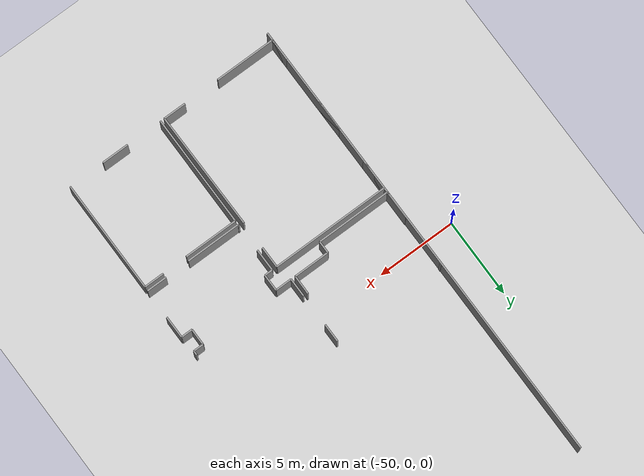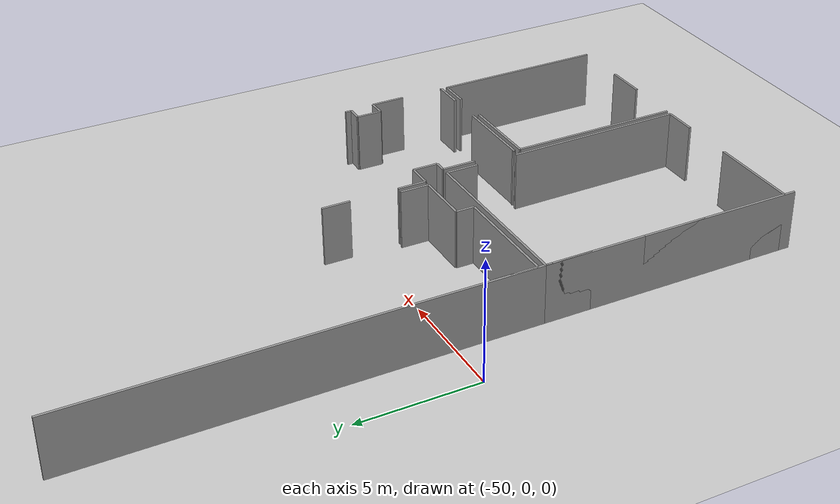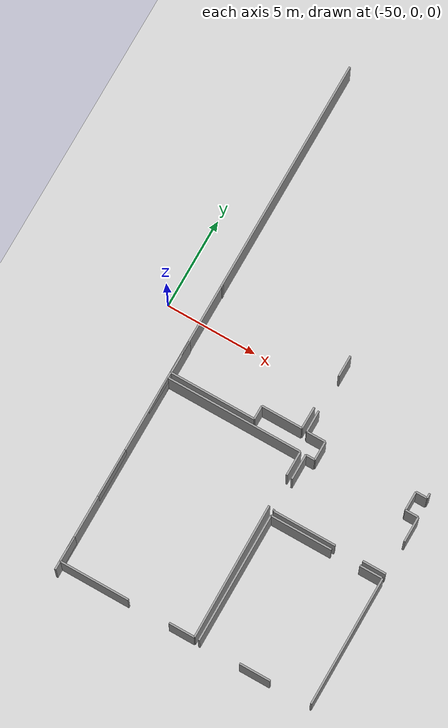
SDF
<sdf version="1.6">
 <world name="default">
  <model name="ground_plane">
   <static>1</static>
   <link name="link">
    <collision name="collision">
     <geometry><plane><normal>0 0 1</normal><size>100 100</size></plane></geometry>
     <surface><friction><ode><mu>100</mu><mu2>50</mu2></ode></friction></surface>
    </collision>
    <visual name="visual">
     <cast_shadows>0</cast_shadows>
     <geometry><plane><normal>0 0 1</normal><size>100 100</size></plane></geometry>
     <material>
      <script><uri>file://media/materials/scripts/gazebo.material</uri><name>Gazebo/Grey</name></script>
     </material>
    </visual>
   </link>
  </model>
  <model name="0510032268_A_40_1_102">
   <static>1</static>
   <link name="Wall_47">
    <collision name="Wall_47_Collision">
     <geometry><box><size>1.29396753655 0.1 2.5</size></box></geometry>
     <pose>0.646983768274 0 1.25 0 0 0</pose>
    </collision>
    <visual name="Wall_47_Visual">
     <pose>0.646983768274 0 1.25 0 0 0</pose>
     <geometry><box><size>1.29396753655 0.1 2.5</size></box></geometry>
     <material>
      <script><uri>file://media/materials/scripts/gazebo.material</uri><name>Gazebo/Grey</name></script>
      <ambient>1 1 1 1</ambient>
     </material>
    </visual>
    <pose>14.200506567 -21.5789908018 0 0 0 3.14159265359</pose>
   </link>
   <link name="Wall_48">
    <collision name="Wall_48_Collision">
     <geometry><box><size>3.49061454571 0.1 2.5</size></box></geometry>
     <pose>1.74530727285 0 1.25 0 0 0</pose>
    </collision>
    <visual name="Wall_48_Visual">
     <pose>1.74530727285 0 1.25 0 0 0</pose>
     <geometry><box><size>3.49061454571 0.1 2.5</size></box></geometry>
     <material>
      <script><uri>file://media/materials/scripts/gazebo.material</uri><name>Gazebo/Grey</name></script>
      <ambient>1 1 1 1</ambient>
     </material>
    </visual>
    <pose>11.3529400562 -21.5789908018 0 0 0 3.14159265359</pose>
   </link>
   <link name="Wall_49">
    <collision name="Wall_49_Collision">
     <geometry><box><size>0.0816347258635 0.1 2.5</size></box></geometry>
     <pose>0.0408173629317 0 1.25 0 0 0</pose>
    </collision>
    <visual name="Wall_49_Visual">
     <pose>0.0408173629317 0 1.25 0 0 0</pose>
     <geometry><box><size>0.0816347258635 0.1 2.5</size></box></geometry>
     <material>
      <script><uri>file://media/materials/scripts/gazebo.material</uri><name>Gazebo/Grey</name></script>
      <ambient>1 1 1 1</ambient>
     </material>
    </visual>
    <pose>7.86232551053 -21.5789908018 0 0 0 1.57079632679</pose>
   </link>
   <link name="Wall_50">
    <collision name="Wall_50_Collision">
     <geometry><box><size>1.40162888574 0.1 2.5</size></box></geometry>
     <pose>0.700814442872 0 1.25 0 0 0</pose>
    </collision>
    <visual name="Wall_50_Visual">
     <pose>0.700814442872 0 1.25 0 0 0</pose>
     <geometry><box><size>1.40162888574 0.1 2.5</size></box></geometry>
     <material>
      <script><uri>file://media/materials/scripts/gazebo.material</uri><name>Gazebo/Grey</name></script>
      <ambient>1 1 1 1</ambient>
     </material>
    </visual>
    <pose>7.86232551053 -19.7529375171 0 0 0 1.57079632679</pose>
   </link>
   <link name="Wall_51">
    <collision name="Wall_51_Collision">
     <geometry><box><size>0.508852225911 0.1 2.5</size></box></geometry>
     <pose>0.254426112956 0 1.25 0 0 0</pose>
    </collision>
    <visual name="Wall_51_Visual">
     <pose>0.254426112956 0 1.25 0 0 0</pose>
     <geometry><box><size>0.508852225911 0.1 2.5</size></box></geometry>
     <material>
      <script><uri>file://media/materials/scripts/gazebo.material</uri><name>Gazebo/Grey</name></script>
      <ambient>1 1 1 1</ambient>
     </material>
    </visual>
    <pose>7.86232551053 -18.3513086313 0 0 0 0.0</pose>
   </link>
   <link name="Wall_52">
    <collision name="Wall_52_Collision">
     <geometry><box><size>1.04639721706 0.1 2.5</size></box></geometry>
     <pose>0.523198608528 0 1.25 0 0 0</pose>
    </collision>
    <visual name="Wall_52_Visual">
     <pose>0.523198608528 0 1.25 0 0 0</pose>
     <geometry><box><size>1.04639721706 0.1 2.5</size></box></geometry>
     <material>
      <script><uri>file://media/materials/scripts/gazebo.material</uri><name>Gazebo/Grey</name></script>
      <ambient>1 1 1 1</ambient>
     </material>
    </visual>
    <pose>8.37117773645 -18.3513086313 0 0 0 1.57079632679</pose>
   </link>
   <link name="Wall_53">
    <collision name="Wall_53_Collision">
     <geometry><box><size>1.04639721706 0.1 2.5</size></box></geometry>
     <pose>0.523198608528 0 1.25 0 0 0</pose>
    </collision>
    <visual name="Wall_53_Visual">
     <pose>0.523198608528 0 1.25 0 0 0</pose>
     <geometry><box><size>1.04639721706 0.1 2.5</size></box></geometry>
     <material>
      <script><uri>file://media/materials/scripts/gazebo.material</uri><name>Gazebo/Grey</name></script>
      <ambient>1 1 1 1</ambient>
     </material>
    </visual>
    <pose>8.37117773645 -17.3049114143 0 0 0 3.14159265359</pose>
   </link>
   <link name="Wall_54">
    <collision name="Wall_54_Collision">
     <geometry><box><size>1.18084694441 0.1 2.5</size></box></geometry>
     <pose>0.590423472205 0 1.25 0 0 0</pose>
    </collision>
    <visual name="Wall_54_Visual">
     <pose>0.590423472205 0 1.25 0 0 0</pose>
     <geometry><box><size>1.18084694441 0.1 2.5</size></box></geometry>
     <material>
      <script><uri>file://media/materials/scripts/gazebo.material</uri><name>Gazebo/Grey</name></script>
      <ambient>1 1 1 1</ambient>
     </material>
    </visual>
    <pose>7.32478051939 -17.3049114143 0 0 0 1.57079632679</pose>
   </link>
   <link name="Wall_55">
    <collision name="Wall_55_Collision">
     <geometry><box><size>1.16561184783 0.1 2.5</size></box></geometry>
     <pose>0.582805923913 0 1.25 0 0 0</pose>
    </collision>
    <visual name="Wall_55_Visual">
     <pose>0.582805923913 0 1.25 0 0 0</pose>
     <geometry><box><size>1.16561184783 0.1 2.5</size></box></geometry>
     <material>
      <script><uri>file://media/materials/scripts/gazebo.material</uri><name>Gazebo/Grey</name></script>
      <ambient>1 1 1 1</ambient>
     </material>
    </visual>
    <pose>7.32478051939 -14.0878938114 0 0 0 1.57079632679</pose>
   </link>
   <link name="Wall_59">
    <collision name="Wall_59_Collision">
     <geometry><box><size>0.268772495572 0.1 2.5</size></box></geometry>
     <pose>0.134386247786 0 1.25 0 0 0</pose>
    </collision>
    <visual name="Wall_59_Visual">
     <pose>0.134386247786 0 1.25 0 0 0</pose>
     <geometry><box><size>0.268772495572 0.1 2.5</size></box></geometry>
     <material>
      <script><uri>file://media/materials/scripts/gazebo.material</uri><name>Gazebo/Grey</name></script>
      <ambient>1 1 1 1</ambient>
     </material>
    </visual>
    <pose>14.1198875142 -17.0073191943 0 0 0 -1.57079632679</pose>
   </link>
   <link name="Wall_60">
    <collision name="Wall_60_Collision">
     <geometry><box><size>0.631875630828 0.1 2.5</size></box></geometry>
     <pose>0.315937815414 0 1.25 0 0 0</pose>
    </collision>
    <visual name="Wall_60_Visual">
     <pose>0.315937815414 0 1.25 0 0 0</pose>
     <geometry><box><size>0.631875630828 0.1 2.5</size></box></geometry>
     <material>
      <script><uri>file://media/materials/scripts/gazebo.material</uri><name>Gazebo/Grey</name></script>
      <ambient>1 1 1 1</ambient>
     </material>
    </visual>
    <pose>14.1198875142 -17.2760916899 0 0 0 3.14159265359</pose>
   </link>
   <link name="Wall_61">
    <collision name="Wall_61_Collision">
     <geometry><box><size>1.04639721706 0.1 2.5</size></box></geometry>
     <pose>0.523198608528 0 1.25 0 0 0</pose>
    </collision>
    <visual name="Wall_61_Visual">
     <pose>0.523198608528 0 1.25 0 0 0</pose>
     <geometry><box><size>1.04639721706 0.1 2.5</size></box></geometry>
     <material>
      <script><uri>file://media/materials/scripts/gazebo.material</uri><name>Gazebo/Grey</name></script>
      <ambient>1 1 1 1</ambient>
     </material>
    </visual>
    <pose>13.4880118834 -17.2760916899 0 0 0 -1.57079632679</pose>
   </link>
   <link name="Wall_62">
    <collision name="Wall_62_Collision">
     <geometry><box><size>0.71998527274 0.1 2.5</size></box></geometry>
     <pose>0.35999263637 0 1.25 0 0 0</pose>
    </collision>
    <visual name="Wall_62_Visual">
     <pose>0.35999263637 0 1.25 0 0 0</pose>
     <geometry><box><size>0.71998527274 0.1 2.5</size></box></geometry>
     <material>
      <script><uri>file://media/materials/scripts/gazebo.material</uri><name>Gazebo/Grey</name></script>
      <ambient>1 1 1 1</ambient>
     </material>
    </visual>
    <pose>13.4880118834 -18.3224889069 0 0 0 0.0</pose>
   </link>
   <link name="Wall_63">
    <collision name="Wall_63_Collision">
     <geometry><box><size>1.40162888574 0.1 2.5</size></box></geometry>
     <pose>0.700814442872 0 1.25 0 0 0</pose>
    </collision>
    <visual name="Wall_63_Visual">
     <pose>0.700814442872 0 1.25 0 0 0</pose>
     <geometry><box><size>1.40162888574 0.1 2.5</size></box></geometry>
     <material>
      <script><uri>file://media/materials/scripts/gazebo.material</uri><name>Gazebo/Grey</name></script>
      <ambient>1 1 1 1</ambient>
     </material>
    </visual>
    <pose>14.2079971561 -18.3224889069 0 0 0 -1.57079632679</pose>
   </link>
   <link name="Wall_65">
    <collision name="Wall_65_Collision">
     <geometry><box><size>2.2742190426 0.1 2.5</size></box></geometry>
     <pose>1.1371095213 0 1.25 0 0 0</pose>
    </collision>
    <visual name="Wall_65_Visual">
     <pose>1.1371095213 0 1.25 0 0 0</pose>
     <geometry><box><size>2.2742190426 0.1 2.5</size></box></geometry>
     <material>
      <script><uri>file://media/materials/scripts/gazebo.material</uri><name>Gazebo/Grey</name></script>
      <ambient>1 1 1 1</ambient>
     </material>
    </visual>
    <pose>7.03493280688 -17.2871371349 0 0 0 3.14159265359</pose>
   </link>
   <link name="Wall_66">
    <collision name="Wall_66_Collision">
     <geometry><box><size>0.761754829208 0.1 2.5</size></box></geometry>
     <pose>0.380877414604 0 1.25 0 0 0</pose>
    </collision>
    <visual name="Wall_66_Visual">
     <pose>0.380877414604 0 1.25 0 0 0</pose>
     <geometry><box><size>0.761754829208 0.1 2.5</size></box></geometry>
     <material>
      <script><uri>file://media/materials/scripts/gazebo.material</uri><name>Gazebo/Grey</name></script>
      <ambient>1 1 1 1</ambient>
     </material>
    </visual>
    <pose>4.76071376427 -17.2871371349 0 0 0 -1.57079632679</pose>
   </link>
   <link name="Wall_67">
    <collision name="Wall_67_Collision">
     <geometry><box><size>4.7362106506 0.1 2.5</size></box></geometry>
     <pose>2.3681053253 0 1.25 0 0 0</pose>
    </collision>
    <visual name="Wall_67_Visual">
     <pose>2.3681053253 0 1.25 0 0 0</pose>
     <geometry><box><size>4.7362106506 0.1 2.5</size></box></geometry>
     <material>
      <script><uri>file://media/materials/scripts/gazebo.material</uri><name>Gazebo/Grey</name></script>
      <ambient>1 1 1 1</ambient>
     </material>
    </visual>
    <pose>4.76071376427 -18.0488919641 0 0 0 3.14159265359</pose>
   </link>
   <link name="Wall_68">
    <collision name="Wall_68_Collision">
     <geometry><box><size>1.80002666142 0.1 2.5</size></box></geometry>
     <pose>0.90001333071 0 1.25 0 0 0</pose>
    </collision>
    <visual name="Wall_68_Visual">
     <pose>0.90001333071 0 1.25 0 0 0</pose>
     <geometry><box><size>1.80002666142 0.1 2.5</size></box></geometry>
     <material>
      <script><uri>file://media/materials/scripts/gazebo.material</uri><name>Gazebo/Grey</name></script>
      <ambient>1 1 1 1</ambient>
     </material>
    </visual>
    <pose>0.0245031136729 -18.0488919641 0 0 0 1.57079632679</pose>
   </link>
   <link name="Wall_69">
    <collision name="Wall_69_Collision">
     <geometry><box><size>0.153493598085 0.1 2.5</size></box></geometry>
     <pose>0.0767467990427 0 1.25 0 0 0</pose>
    </collision>
    <visual name="Wall_69_Visual">
     <pose>0.0767467990427 0 1.25 0 0 0</pose>
     <geometry><box><size>0.153493598085 0.1 2.5</size></box></geometry>
     <material>
      <script><uri>file://media/materials/scripts/gazebo.material</uri><name>Gazebo/Grey</name></script>
      <ambient>1 1 1 1</ambient>
     </material>
    </visual>
    <pose>0.0245031136729 -13.0616830973 0 0 0 1.57079632679</pose>
   </link>
   <link name="Wall_72">
    <collision name="Wall_72_Collision">
     <geometry><box><size>1.2111171215 0.1 2.5</size></box></geometry>
     <pose>0.60555856075 0 1.25 0 0 0</pose>
    </collision>
    <visual name="Wall_72_Visual">
     <pose>0.60555856075 0 1.25 0 0 0</pose>
     <geometry><box><size>1.2111171215 0.1 2.5</size></box></geometry>
     <material>
      <script><uri>file://media/materials/scripts/gazebo.material</uri><name>Gazebo/Grey</name></script>
      <ambient>1 1 1 1</ambient>
     </material>
    </visual>
    <pose>7.04635912931 -16.0760739156 0 0 0 -1.5802309981</pose>
   </link>
   <link name="Wall_73">
    <collision name="Wall_73_Collision">
     <geometry><box><size>1.43463826168 0.1 2.5</size></box></geometry>
     <pose>0.717319130838 0 1.25 0 0 0</pose>
    </collision>
    <visual name="Wall_73_Visual">
     <pose>0.717319130838 0 1.25 0 0 0</pose>
     <geometry><box><size>1.43463826168 0.1 2.5</size></box></geometry>
     <material>
      <script><uri>file://media/materials/scripts/gazebo.material</uri><name>Gazebo/Grey</name></script>
      <ambient>1 1 1 1</ambient>
     </material>
    </visual>
    <pose>7.60510629654 -28.9497305292 0 0 0 3.14159265359</pose>
   </link>
   <link name="Wall_74">
    <collision name="Wall_74_Collision">
     <geometry><box><size>3.86882581841 0.1 2.5</size></box></geometry>
     <pose>1.93441290921 0 1.25 0 0 0</pose>
    </collision>
    <visual name="Wall_74_Visual">
     <pose>1.93441290921 0 1.25 0 0 0</pose>
     <geometry><box><size>3.86882581841 0.1 2.5</size></box></geometry>
     <material>
      <script><uri>file://media/materials/scripts/gazebo.material</uri><name>Gazebo/Grey</name></script>
      <ambient>1 1 1 1</ambient>
     </material>
    </visual>
    <pose>3.86882581841 -28.9497305292 0 0 0 3.14159265359</pose>
   </link>
   <link name="Wall_75">
    <collision name="Wall_75_Collision">
     <geometry><box><size>1.39210695038 0.1 2.5</size></box></geometry>
     <pose>0.696053475189 0 1.25 0 0 0</pose>
    </collision>
    <visual name="Wall_75_Visual">
     <pose>0.696053475189 0 1.25 0 0 0</pose>
     <geometry><box><size>1.39210695038 0.1 2.5</size></box></geometry>
     <material>
      <script><uri>file://media/materials/scripts/gazebo.material</uri><name>Gazebo/Grey</name></script>
      <ambient>1 1 1 1</ambient>
     </material>
    </visual>
    <pose>0.0 -28.9497305292 0 0 0 1.57079632679</pose>
   </link>
   <link name="Wall_76">
    <collision name="Wall_76_Collision">
     <geometry><box><size>2.687978874 0.1 2.5</size></box></geometry>
     <pose>1.343989437 0 1.25 0 0 0</pose>
    </collision>
    <visual name="Wall_76_Visual">
     <pose>1.343989437 0 1.25 0 0 0</pose>
     <geometry><box><size>2.687978874 0.1 2.5</size></box></geometry>
     <material>
      <script><uri>file://media/materials/scripts/gazebo.material</uri><name>Gazebo/Grey</name></script>
      <ambient>1 1 1 1</ambient>
     </material>
    </visual>
    <pose>0.0 -25.243666326 0 0 0 1.57079632679</pose>
   </link>
   <link name="Wall_77">
    <collision name="Wall_77_Collision">
     <geometry><box><size>1.94501399724 0.1 2.5</size></box></geometry>
     <pose>0.972506998622 0 1.25 0 0 0</pose>
    </collision>
    <visual name="Wall_77_Visual">
     <pose>0.972506998622 0 1.25 0 0 0</pose>
     <geometry><box><size>1.94501399724 0.1 2.5</size></box></geometry>
     <material>
      <script><uri>file://media/materials/scripts/gazebo.material</uri><name>Gazebo/Grey</name></script>
      <ambient>1 1 1 1</ambient>
     </material>
    </visual>
    <pose>0.0 -20.2934025684 0 0 0 1.57079632679</pose>
   </link>
   <link name="Wall_78">
    <collision name="Wall_78_Collision">
     <geometry><box><size>7.54899035745 0.1 2.5</size></box></geometry>
     <pose>3.77449517873 0 1.25 0 0 0</pose>
    </collision>
    <visual name="Wall_78_Visual">
     <pose>3.77449517873 0 1.25 0 0 0</pose>
     <geometry><box><size>7.54899035745 0.1 2.5</size></box></geometry>
     <material>
      <script><uri>file://media/materials/scripts/gazebo.material</uri><name>Gazebo/Grey</name></script>
      <ambient>1 1 1 1</ambient>
     </material>
    </visual>
    <pose>0.0 -18.3483885711 0 0 0 0.0</pose>
   </link>
   <link name="Wall_79">
    <collision name="Wall_79_Collision">
     <geometry><box><size>1.35770102393 0.1 2.5</size></box></geometry>
     <pose>0.678850511963 0 1.25 0 0 0</pose>
    </collision>
    <visual name="Wall_79_Visual">
     <pose>0.678850511963 0 1.25 0 0 0</pose>
     <geometry><box><size>1.35770102393 0.1 2.5</size></box></geometry>
     <material>
      <script><uri>file://media/materials/scripts/gazebo.material</uri><name>Gazebo/Grey</name></script>
      <ambient>1 1 1 1</ambient>
     </material>
    </visual>
    <pose>7.54899035745 -18.3483885711 0 0 0 -1.57079632679</pose>
   </link>
   <link name="Wall_80">
    <collision name="Wall_80_Collision">
     <geometry><box><size>7.48965674775 0.1 2.5</size></box></geometry>
     <pose>3.74482837387 0 1.25 0 0 0</pose>
    </collision>
    <visual name="Wall_80_Visual">
     <pose>3.74482837387 0 1.25 0 0 0</pose>
     <geometry><box><size>7.48965674775 0.1 2.5</size></box></geometry>
     <material>
      <script><uri>file://media/materials/scripts/gazebo.material</uri><name>Gazebo/Grey</name></script>
      <ambient>1 1 1 1</ambient>
     </material>
    </visual>
    <pose>7.54899035745 -21.4602840076 0 0 0 -1.56330379863</pose>
   </link>
   <link name="Wall_81">
    <collision name="Wall_81_Collision">
     <geometry><box><size>1.73070697196 0.1 2.5</size></box></geometry>
     <pose>0.865353485981 0 1.25 0 0 0</pose>
    </collision>
    <visual name="Wall_81_Visual">
     <pose>0.865353485981 0 1.25 0 0 0</pose>
     <geometry><box><size>1.73070697196 0.1 2.5</size></box></geometry>
     <material>
      <script><uri>file://media/materials/scripts/gazebo.material</uri><name>Gazebo/Grey</name></script>
      <ambient>1 1 1 1</ambient>
     </material>
    </visual>
    <pose>11.8944207807 -28.9784232945 0 0 0 3.14159265359</pose>
   </link>
   <link name="Wall_82">
    <collision name="Wall_82_Collision">
     <geometry><box><size>7.13396093467 0.1 2.5</size></box></geometry>
     <pose>3.56698046734 0 1.25 0 0 0</pose>
    </collision>
    <visual name="Wall_82_Visual">
     <pose>3.56698046734 0 1.25 0 0 0</pose>
     <geometry><box><size>7.13396093467 0.1 2.5</size></box></geometry>
     <material>
      <script><uri>file://media/materials/scripts/gazebo.material</uri><name>Gazebo/Grey</name></script>
      <ambient>1 1 1 1</ambient>
     </material>
    </visual>
    <pose>7.86994305883 -28.9784232945 0 0 0 1.57079632679</pose>
   </link>
   <link name="Wall_83">
    <collision name="Wall_83_Collision">
     <geometry><box><size>3.42624626264 0.1 2.5</size></box></geometry>
     <pose>1.71312313132 0 1.25 0 0 0</pose>
    </collision>
    <visual name="Wall_83_Visual">
     <pose>1.71312313132 0 1.25 0 0 0</pose>
     <geometry><box><size>3.42624626264 0.1 2.5</size></box></geometry>
     <material>
      <script><uri>file://media/materials/scripts/gazebo.material</uri><name>Gazebo/Grey</name></script>
      <ambient>1 1 1 1</ambient>
     </material>
    </visual>
    <pose>7.86994305883 -21.8444623598 0 0 0 0.0</pose>
   </link>
   <link name="Wall_84">
    <collision name="Wall_84_Collision">
     <geometry><box><size>1.27720893031 0.1 2.5</size></box></geometry>
     <pose>0.638604465153 0 1.25 0 0 0</pose>
    </collision>
    <visual name="Wall_84_Visual">
     <pose>0.638604465153 0 1.25 0 0 0</pose>
     <geometry><box><size>1.27720893031 0.1 2.5</size></box></geometry>
     <material>
      <script><uri>file://media/materials/scripts/gazebo.material</uri><name>Gazebo/Grey</name></script>
      <ambient>1 1 1 1</ambient>
     </material>
    </visual>
    <pose>12.8981597273 -21.8444623598 0 0 0 0.0</pose>
   </link>
   <link name="Wall_85">
    <collision name="Wall_85_Collision">
     <geometry><box><size>7.13396195141 0.1 2.5</size></box></geometry>
     <pose>3.56698097571 0 1.25 0 0 0</pose>
    </collision>
    <visual name="Wall_85_Visual">
     <pose>3.56698097571 0 1.25 0 0 0</pose>
     <geometry><box><size>7.13396195141 0.1 2.5</size></box></geometry>
     <material>
      <script><uri>file://media/materials/scripts/gazebo.material</uri><name>Gazebo/Grey</name></script>
      <ambient>1 1 1 1</ambient>
     </material>
    </visual>
    <pose>14.1753686576 -21.8444623598 0 0 0 -1.57026243352</pose>
   </link>
   <link name="Wall_471">
    <collision name="Wall_471_Collision">
     <geometry><box><size>29.4321752544 0.1 2.5</size></box></geometry>
     <pose>14.7160876272 0 1.25 0 0 0</pose>
    </collision>
    <visual name="Wall_471_Visual">
     <pose>14.7160876272 0 1.25 0 0 0</pose>
     <geometry><box><size>29.4321752544 0.1 2.5</size></box></geometry>
     <material>
      <script><uri>file://media/materials/scripts/gazebo.material</uri><name>Gazebo/Grey</name></script>
      <ambient>1 1 1 1</ambient>
     </material>
    </visual>
    <pose>0.0 -29.4321752544 0 0 0 1.57079632679</pose>
   </link>
   <pose>-47.9 14.7321752544 0 0 0 0</pose>
  </model>
 </world>
</sdf>
